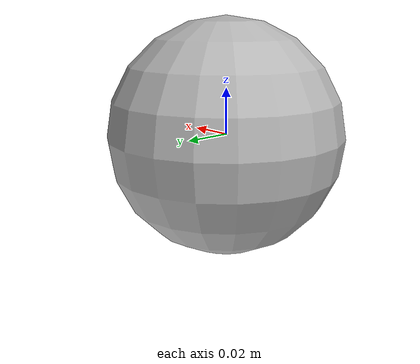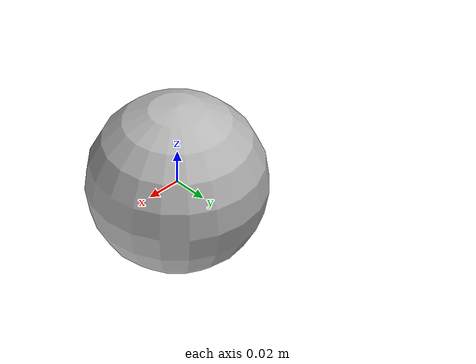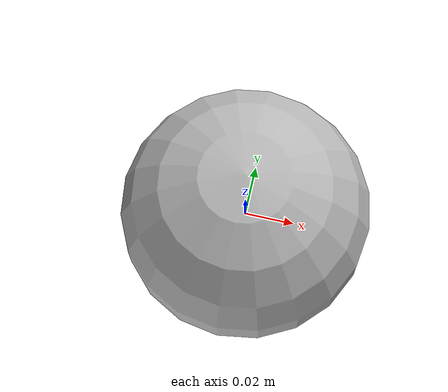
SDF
<sdf version='1.5'>
  <model name='lumping_test'>
    <link name='base_link'>
      <pose>0 0 0 0 -0 0</pose>
      <inertial>
        <pose>0 0 0 0 -0 0</pose>
        <mass>4</mass>
        <inertia>
          <ixx>0.004</ixx>
          <ixy>0</ixy>
          <ixz>0</ixz>
          <iyy>0.004</iyy>
          <iyz>0</iyz>
          <izz>0.004</izz>
        </inertia>
      </inertial>
      <collision name='base_link_collision'>
        <pose>0 0 0 0 -0 0</pose>
        <geometry>
          <sphere>
            <radius>0.02</radius>
          </sphere>
        </geometry>
      </collision>
      <collision name='base_link_fixed_joint_lump__child_link_1_collision_1'>
        <pose>0 0 0 0 -0 0</pose>
        <geometry>
          <sphere>
            <radius>0.03</radius>
          </sphere>
        </geometry>
        <max_contacts>177</max_contacts>
        <surface>
          <contact>
            <ode>
              <min_depth>0.007</min_depth>
            </ode>
          </contact>
          <friction>
            <ode>
              <mu2>0.71</mu2>
              <mu>0.7</mu>
            </ode>
          </friction>
        </surface>
      </collision>
      <collision name='base_link_fixed_joint_lump__child_link_2_collision_2'>
        <pose>0 0 0 0 -0 0</pose>
        <geometry>
          <sphere>
            <radius>0.05</radius>
          </sphere>
        </geometry>
        <surface>
          <contact>
            <ode/>
          </contact>
          <friction>
            <ode>
              <mu2>0.51</mu2>
              <mu>0.5</mu>
            </ode>
          </friction>
        </surface>
      </collision>
      <collision name='base_link_fixed_joint_lump__child_link_1a_collision_3'>
        <pose>0 0 0 0 -0 0</pose>
        <geometry>
          <sphere>
            <radius>0.03</radius>
          </sphere>
        </geometry>
        <surface>
          <contact>
            <ode/>
          </contact>
          <friction>
            <ode>
              <mu2>0.61</mu2>
              <mu>0.6</mu>
            </ode>
          </friction>
        </surface>
        <max_contacts>166</max_contacts>
      </collision>
      <visual name='base_link_visual'>
        <pose>0 0 0 0 -0 0</pose>
        <geometry>
          <sphere>
            <radius>0.02</radius>
          </sphere>
        </geometry>
      </visual>
      <visual name='base_link_fixed_joint_lump__child_link_1_visual_1'>
        <pose>0 0 0 0 -0 0</pose>
        <geometry>
          <sphere>
            <radius>0.03</radius>
          </sphere>
        </geometry>
        <material>
          <ambient>0 1 0 1</ambient>
          <script>
            <name>script_uri_71_name</name>
            <uri>file://media/materials/scripts/gazebo.material</uri>
          </script>
        </material>
      </visual>
      <visual name='base_link_fixed_joint_lump__child_link_2_visual_2'>
        <pose>0 0 0 0 -0 0</pose>
        <geometry>
          <sphere>
            <radius>0.05</radius>
          </sphere>
        </geometry>
        <material>
          <script>
            <uri>script_uri_51</uri>
            <name>script_name_51</name>
          </script>
        </material>
      </visual>
      <visual name='base_link_fixed_joint_lump__child_link_1a_visual_3'>
        <pose>0 0 0 0 -0 0</pose>
        <geometry>
          <sphere>
            <radius>0.03</radius>
          </sphere>
        </geometry>
        <material>
          <script>
            <uri>__default__</uri>
            <name>__default__</name>
          </script>
        </material>
      </visual>
    </link>
  </model>
</sdf>
